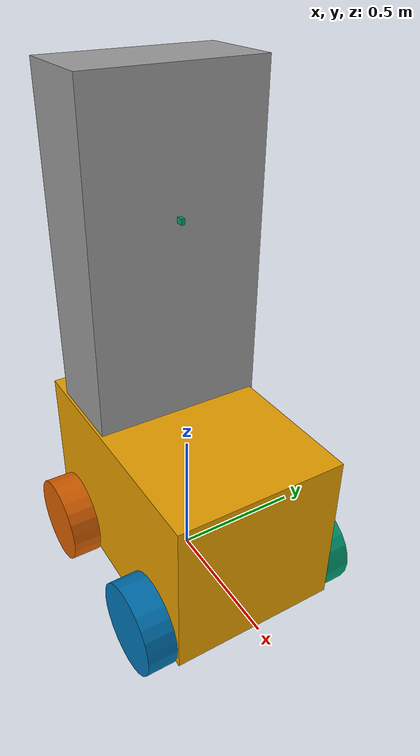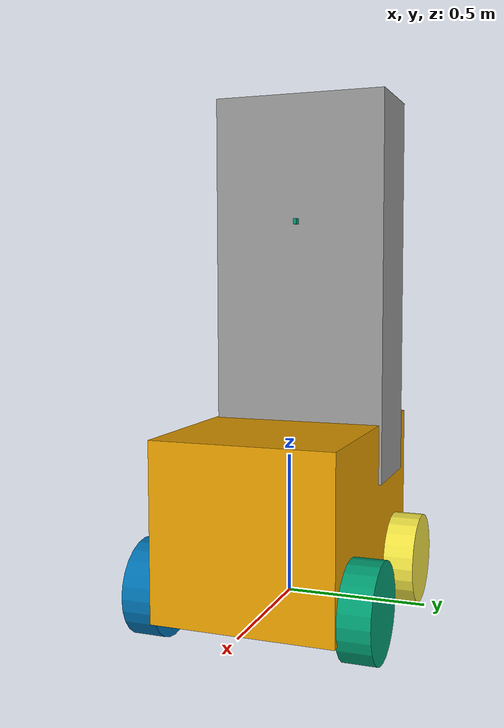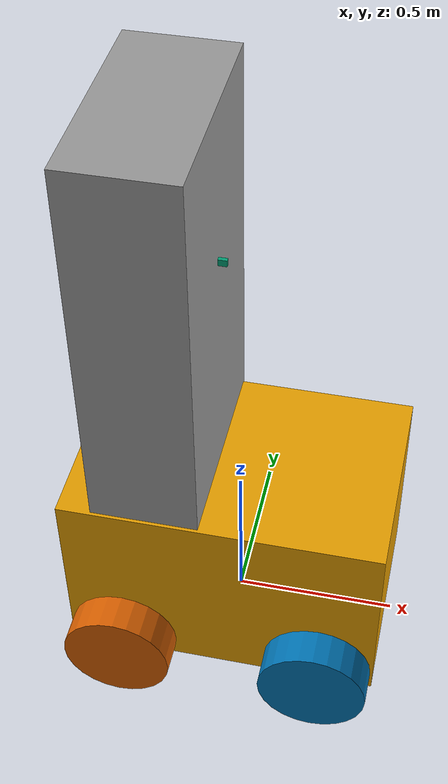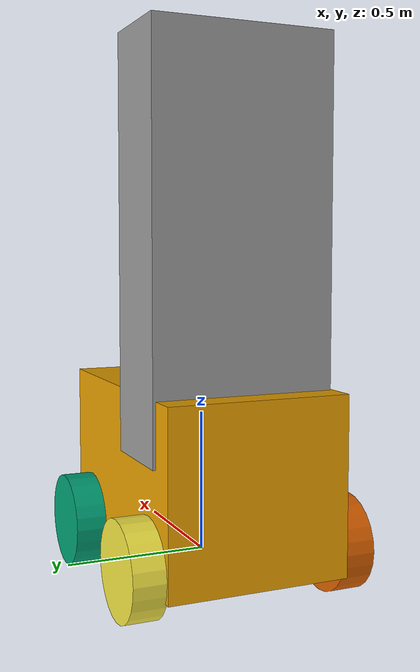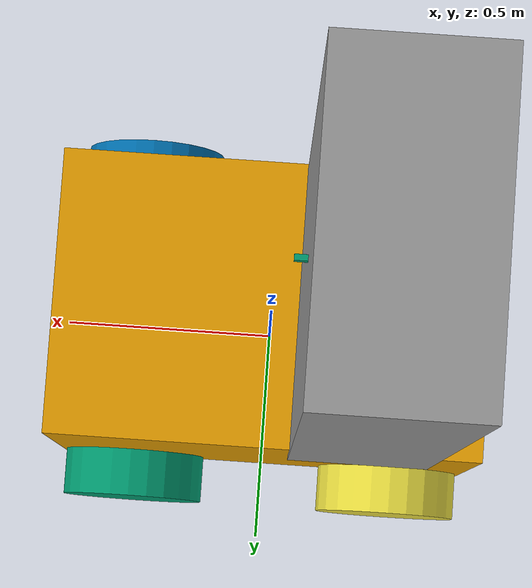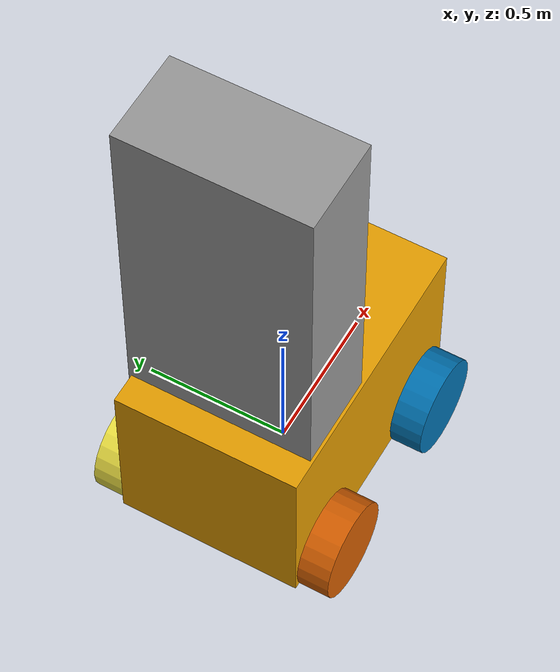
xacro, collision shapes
<?xml version="1.0"?>
<robot name="icerobot" xmlns:xacro="http://ros.org/wiki/xacro">
  <xacro:include filename="$(find icerobot_description)/urdf/azure_camera.urdf.xacro" />

  <!-- Base Size -->
  <xacro:property name="base_x_size" value="0.96520000" />
  <xacro:property name="base_y_size" value="0.63500000" />
  <xacro:property name="base_z_size" value="0.6154100" />

  <!-- Platform Size -->
  <xacro:property name="platform_x_size" value="0.320000" />
  <xacro:property name="platform_y_size" value="0.63500000" />
  <xacro:property name="platform_z_size" value="1.4000000" />

  <!-- Wheel Mounting Positions -->
  <xacro:property name="wheelbase" value="0.3080" />
  <xacro:property name="track" value="0.33" />
  <xacro:property name="wheel_vertical_offset" value="0.07" />

  <!-- Wheel Properties -->
  <xacro:property name="wheel_length" value="0.11430" />
  <xacro:property name="wheel_radius" value="0.167" />

  <!-- Base inertia properties -->
  <xacro:property name="mass_base" value="34.33" />
  <xacro:property name="ixx_base" value="2.4304" />
  <xacro:property name="ixy_base" value="0.5116" />
  <xacro:property name="ixz_base" value="0.0091" />
  <xacro:property name="iyy_base" value="3.7564" />
  <xacro:property name="iyz_base" value="-0.0016" />
  <xacro:property name="izz_base" value="3.8077" />

  <!-- Platform inertia properties -->
  <xacro:property name="mass_platform" value="49.4938" />
  <xacro:property name="ixx_platform" value="16.83" />
  <xacro:property name="ixy_platform" value="0.3363" />
  <xacro:property name="ixz_platform" value="0.1616" />
  <xacro:property name="iyy_platform" value="3.9954" />
  <xacro:property name="iyz_platform" value="6.3377" />
  <xacro:property name="izz_platform" value="13.2782" />

  <!-- Wheel inertia properties -->
  <xacro:property name="mass_wheel" value="4" />
  <xacro:property name="ixx_wheel" value="0.0553" />
  <xacro:property name="ixy_wheel" value="0" />
  <xacro:property name="ixz_wheel" value="0" />
  <xacro:property name="iyy_wheel" value="0.0315" />
  <xacro:property name="iyz_wheel" value="0" />
  <xacro:property name="izz_wheel" value="0.0315" />

  <xacro:arg name="robot_namespace" default="/" />
  <xacro:property name="PI" value="3.14159"/>

  <!-- Robot base -->
  <link name="base_link">
    <visual>
      <origin rpy="0 0 ${PI}" xyz="0 0 0"/>
      <geometry>
        <mesh filename="package://icerobot_description/meshes/base.dae"/>
      </geometry>
    </visual>
    <collision>
      <origin xyz="0 0 ${base_z_size/2}" rpy="0 0 0" />
      <geometry>
        <box size="${base_x_size} ${base_y_size} ${base_z_size}"/>
      </geometry>
    </collision>
  </link>

  <link name="inertial_link">
    <inertial>
      <mass value="${mass_base}" />
      <origin xyz="-0.00065 -0.085 0.062" rpy="0 0 ${PI}"/>
      <inertia ixx="${ixx_base}" ixy="${ixy_base}" ixz="${ixz_base}" iyy="${iyy_base}" iyz="${iyz_base}" izz="${izz_base}"/>
    </inertial>
  </link>

  <joint name="inertial_joint" type="fixed">
    <origin xyz="0 0 0" rpy="0 0 0" />
    <parent link="base_link" />
    <child link="inertial_link" />
  </joint>

  <!-- Wheel macros -->
  <xacro:macro name="wheel" params="prefix suffix reflect_side reflect_front">
    <link name="${prefix}_${suffix}_wheel">
      <visual>
       <origin xyz="0 0 0" rpy="0 0 ${reflect_side*PI/2+PI}" />
       <geometry>
         <mesh filename="package://icerobot_description/meshes/wheel.dae"/>
       </geometry>
      </visual>
      <collision>
	      <origin xyz="0 ${reflect_side*0.04} 0" rpy="${PI/2} 0 0" />
        <geometry>
          <cylinder radius="${wheel_radius}" length="${wheel_length}"/>
        </geometry>
      </collision>
      <inertial>
        <mass value="${mass_wheel}" />
        <origin xyz="0 0 0" />
        <inertia ixx="${ixx_wheel}" ixy="${ixy_wheel}" ixz="${ixz_wheel}" iyy="${iyy_wheel}" iyz="${iyz_wheel}" izz="${izz_wheel}"/>
      </inertial>
    </link>

    <joint name="${prefix}_${suffix}_wheel_joint" type="continuous">
      <axis xyz="0 1 0" rpy="0 0 0" />
      <parent link="base_link"/>
      <child link="${prefix}_${suffix}_wheel"/>
      <origin xyz="${reflect_front*wheelbase} ${reflect_side*track} ${wheel_vertical_offset}" rpy="0 0 0"/>
    </joint>

    <!-- Gazebo xacro -->
    <!-- Wheel parameters -->
    <gazebo reference="${prefix}_${suffix}_wheel">
      <mu1 value="1.0"/>
      <mu2 value="0.5"/>
      <kp value="100000000.0" />
      <kd value="1.0" />
      <fdir1 value="1 0 0"/>
    </gazebo>

    <transmission name="${prefix}_${suffix}_wheel_trans" type="SimpleTransmission">
      <type>transmission_interface/SimpleTransmission</type>
      <actuator name="${prefix}_${suffix}_wheel_motor">
        <mechanicalReduction>1</mechanicalReduction>
      </actuator>
      <joint name="${prefix}_${suffix}_wheel_joint">
        <hardwareInterface>hardware_interface/VelocityJointInterface</hardwareInterface>
      </joint>
    </transmission>

  </xacro:macro>
  <xacro:wheel prefix="front" suffix="left" reflect_side="1" reflect_front="1"/>
  <xacro:wheel prefix="rear" suffix="left" reflect_side="1" reflect_front="-1"/>
  <xacro:wheel prefix="front" suffix="right" reflect_side="-1" reflect_front="1"/>
  <xacro:wheel prefix="rear" suffix="right" reflect_side="-1" reflect_front="-1"/>

  <!-- Sensor Platform -->
  <joint name="platform_to_base" type="fixed">
    <parent link="base_link"/>
    <child link="platform"/>
    <origin rpy="0 0 0" xyz="-0.12 0.01 0.4"/>
  </joint>

  <link name="platform">
    <visual>
      <origin rpy="0 0 ${PI}" xyz="0 0 0"/>
      <geometry>
        <mesh filename="package://icerobot_description/meshes/platform.dae"/>
      </geometry>
    </visual>
    <collision>
      <geometry>
        <box size="${platform_x_size} ${platform_y_size} ${platform_z_size}"/>
      </geometry>
      <origin rpy="0 0 0" xyz="-0.1 0 ${(platform_z_size/2)}"/>
    </collision>
    <inertial>
      <mass value="${mass_platform}" />
      <origin xyz="0 0 0" />
      <inertia ixx="${ixx_platform}" ixy="${ixy_platform}" ixz="${ixz_platform}" iyy="${iyy_platform}" iyz="${iyz_platform}" izz="${izz_platform}"/>
    </inertial>
  </link>

  <gazebo reference="platform">
    <material>Gazebo/Grey</material>
  </gazebo>

  <!-- Base footprint is on the ground under the robot -->
  <link name="base_footprint"/>

  <joint name="base_footprint_joint" type="fixed">
    <origin xyz="0 0 -0.1" rpy="0 0 0" />
    <parent link="base_link" />
    <child link="base_footprint" />
  </joint>

  <!-- IMU Link is the standard mounting position for the UM6 IMU.-->
  <!-- Can be modified with environment variables in /etc/ros/setup.bash -->
  <link name="imu_link"/>
  <joint name="imu_joint" type="fixed">
	  <origin xyz="-0.10 0.007 1.24" rpy="0 0 0" />
    <parent link="base_link" />
    <child link="imu_link" />
  </joint>
  <gazebo reference="imu_link">
  </gazebo>

  <joint name="scan_joint" type="fixed">
    <parent link="base_link"/>
    <child link="base_scan"/>
    <origin xyz="-0.375 0.008 1.322" rpy="0 ${-PI/2} 0"/>
  </joint>

  <link name="base_scan">
    <visual>
      <origin xyz="0 0 -0.1" rpy="0 0 0"/>
      <geometry>
        <mesh filename="package://icerobot_description/meshes/lidar.dae"/>
      </geometry>
    </visual>
    <collision>
      <origin xyz="0 0 -0.1" rpy="0 0 0"/>
      <geometry>
        <cylinder length="0.15" radius="0.045"/>
      </geometry>
    </collision>
    <inertial>
      <mass value="0.83" />
      <origin xyz="0 0 0" />
      <inertia ixx="0.002" ixy="0.0" ixz="0.0"
               iyy="0.001" iyz="0.0"
               izz="0.002" />
    </inertial>
  </link>

  <!-- add topic_kinect="kinect" for kinect camera -->

  <xacro:rgbd_cameras topic_azure="azure" parent_link="base_link"/>

  <gazebo>
    <plugin name="gazebo_ros_control" filename="libgazebo_ros_control.so">
      <robotNamespace>$(arg robot_namespace)</robotNamespace>
      <legacyModeNS>true</legacyModeNS>
    </plugin>
  </gazebo>

  <gazebo>
    <plugin name="imu_controller" filename="libhector_gazebo_ros_imu.so">
      <robotNamespace>$(arg robot_namespace)</robotNamespace>
      <updateRate>20.0</updateRate>
      <bodyName>base_link</bodyName>
      <topicName>imu/data</topicName>
      <xyzOffset>0 0 0</xyzOffset>
      <rpyOffset>0 0 0</rpyOffset>
      <accelDrift>0.5 0.5 0.5</accelDrift>
      <accelGaussianNoise>0.05 0.05 0.05</accelGaussianNoise>
      <rateDrift>0.5 0.5 0.5 </rateDrift>
      <rateGaussianNoise>0.05 0.05 0.05 </rateGaussianNoise>
      <headingDrift>0.005</headingDrift>
      <headingGaussianNoise>0.005</headingGaussianNoise>
    </plugin>
  </gazebo>

  <gazebo>
    <plugin name="gps_controller" filename="libhector_gazebo_ros_gps.so">
      <robotNamespace>$(arg robot_namespace)</robotNamespace>
      <updateRate>5</updateRate>
      <bodyName>base_link</bodyName>
      <frameId>base_link</frameId>
      <topicName>navsat/fix</topicName>
      <velocityTopicName>navsat/vel</velocityTopicName>
      <referenceLatitude>42.86</referenceLatitude>
      <referenceLongitude>-80.27</referenceLongitude>
      <referenceHeading>0</referenceHeading>
      <referenceAltitude>0</referenceAltitude>
      <drift>0.0001 0.0001 0.0001</drift>
    </plugin>
  </gazebo>

  <gazebo reference="base_scan">
    <sensor type="ray" name="velodyne_VLP16">
      <pose>2 0 0 0 0 0</pose>
      <visualize>false</visualize>
      <update_rate>10</update_rate>
      <ray>
        <scan>
          <horizontal>
            <samples>1875</samples>
            <resolution>1</resolution>
	    <min_angle>-${PI}</min_angle>
	    <max_angle>${PI}</max_angle>
          </horizontal>
          <vertical>
            <samples>16</samples>
            <resolution>1</resolution>
            <min_angle>-${15.0*PI/180.0}</min_angle>
            <max_angle> ${15.0*PI/180.0}</max_angle>
          </vertical>
        </scan>
        <range>
          <min>0.3</min>
          <max>2</max>
          <resolution>0.001</resolution>
        </range>
        <noise>
          <type>gaussian</type>
          <mean>0.0</mean>
          <stddev>0.0</stddev>
        </noise>
      </ray>
      <plugin name="gazebo_ros_laser_controller" filename="libgazebo_ros_laser.so">
	<robotNamespace>$(arg robot_namespace)</robotNamespace>
	<topicName>scan</topicName>
        <frameName>base_scan</frameName>
	<min_range>0.9</min_range>
	<max_range>2</max_range>
        <gaussianNoise>0.008</gaussianNoise>
      </plugin>
    </sensor>
  </gazebo>

</robot>

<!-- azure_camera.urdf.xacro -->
<robot xmlns:xacro="http://ros.org/wiki/xacro">
<!-- add topic_kinect to param for kinect camera -->
  <xacro:macro name="rgbd_cameras" params="topic_azure parent_link">
    <!-- Azure camera joints -->
    <joint name="azure_camera_base_joint" type="fixed">
      <origin xyz="-0.10 0.007 1.345" rpy="0 0 ${-PI/2}"/>
      <parent link="${parent_link}"/>
      <child link="azure_camera_body"/>
    </joint>

    <link name="azure_camera_body">
      <visual>
        <origin xyz="0 0 0" rpy="0 0 ${PI}"/>
        <geometry>
         <mesh filename="package://icerobot_description/meshes/camera.dae" />
        </geometry>
      </visual>
      <collision>
        <origin xyz="0 0 0" rpy="0 0 0"/>
        <geometry>
          <box size="0.012 0.132 0.020"/>
        </geometry>
      </collision>
      <inertial>
        <mass value="0.44" />
        <origin xyz="0 0 0" />
        <inertia ixx="0.000881243" ixy="0.0" ixz="0.0"
                 iyy="0.000498940" iyz="0.0"
                 izz="0.000879257" />
      </inertial>
    </link>

    <joint name="azure_camera_visor_joint" type="fixed">
      <origin xyz="0.07 0 0.025" rpy="${-PI/2-0.1} 0 ${-PI/2}"/>
      <parent link="azure_camera_body"/>
      <child link="azure_camera_visor"/>
    </joint>

    <link name="azure_camera_visor"/>

    <joint name="azure_lens_gazebo_joint" type="fixed">
	    <origin xyz="0 0 0" rpy="0 0 0"/>
      <parent link="azure_camera_visor"/>
      <child link="azure_camera"/>
    </joint>

    <xacro:macro name="depth_cam_init" params="
               frame:=cam_name           topic:=cam_topic
               h_fov:=1.3090             v_fov:=1.1345
               min_range:=0.5            max_range:=3.86
               width:=640                height:=576
               update_rate:=30
               robot_namespace:=/">

      <link name="${frame}" />

      <link name="${frame}_gazebo" />
      <joint name="${frame}_gazebo_joint" type="fixed">
        <parent link="${frame}"/>
        <child link="${frame}_gazebo"/>
        <origin xyz="0.0 0 0" rpy="-1.5707963267948966 0 -1.5707963267948966"/>
      </joint>
      <gazebo reference="${frame}">
        <sensor type="depth" name="${frame}">
          <update_rate>${update_rate}</update_rate>
          <camera>
            <horizontal_fov>${h_fov}</horizontal_fov>
            <image>
              <width>${width}</width>
              <height>${height}</height>
              <format>RGB8</format>
            </image>
            <clip>
              <near>0.01</near>
              <far>50.0</far>
            </clip>
          </camera>
          <plugin name="${frame}_controller" filename="libgazebo_ros_openni_kinect.so">
            <baseline>0.2</baseline>
            <alwaysOn>true</alwaysOn>
            <updateRate>${update_rate}</updateRate>
            <cameraName>${topic}</cameraName>
            <imageTopicName>color/image_raw</imageTopicName>
            <cameraInfoTopicName>color/camera_info</cameraInfoTopicName>
            <depthImageTopicName>depth/image_rect_raw</depthImageTopicName>
            <depthImageInfoTopicName>depth/camera_info</depthImageInfoTopicName>
            <pointCloudTopicName>depth/color/points</pointCloudTopicName>
            <frameName>${frame}_gazebo</frameName>
            <pointCloudCutoff>${min_range}</pointCloudCutoff>
            <pointCloudCutoffMax>${max_range}</pointCloudCutoffMax>
            <distortionK1>0.00000001</distortionK1>
            <distortionK2>0.00000001</distortionK2>
            <distortionK3>0.00000001</distortionK3>
            <distortionT1>0.00000001</distortionT1>
            <distortionT2>0.00000001</distortionT2>
            <CxPrime>0</CxPrime>
            <Cx>0</Cx>
            <Cy>0</Cy>
            <focalLength>0</focalLength>
            <hackBaseline>0</hackBaseline>
          </plugin>
        </sensor>
      </gazebo>
    </xacro:macro>
    <xacro:depth_cam_init frame="azure_camera" topic="${topic_azure}"/>
  </xacro:macro>
</robot>
